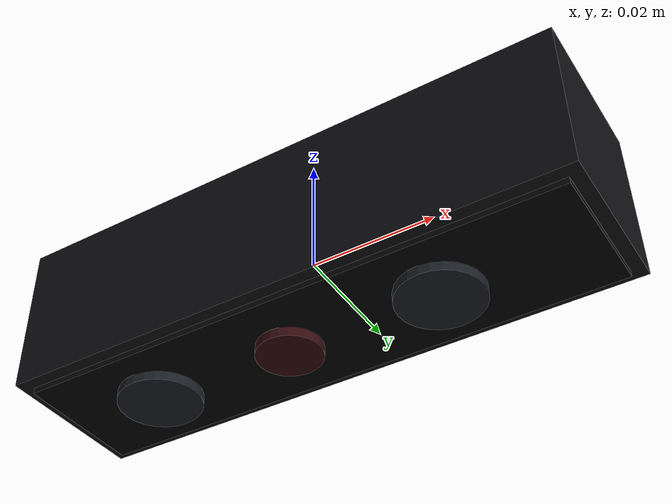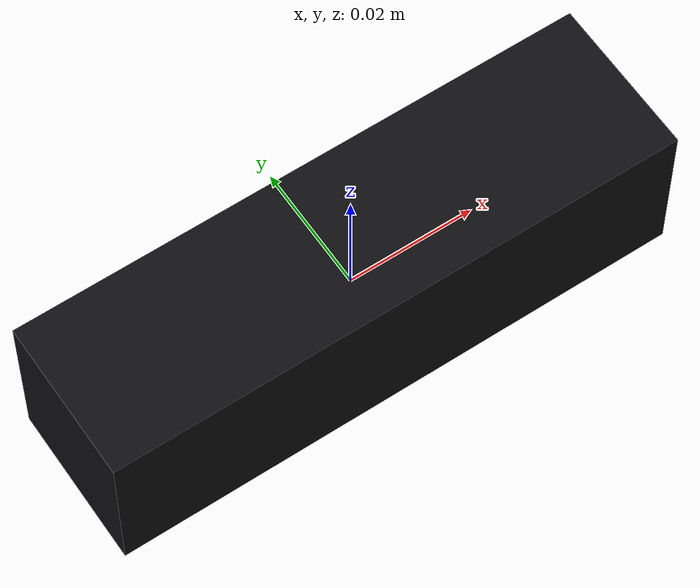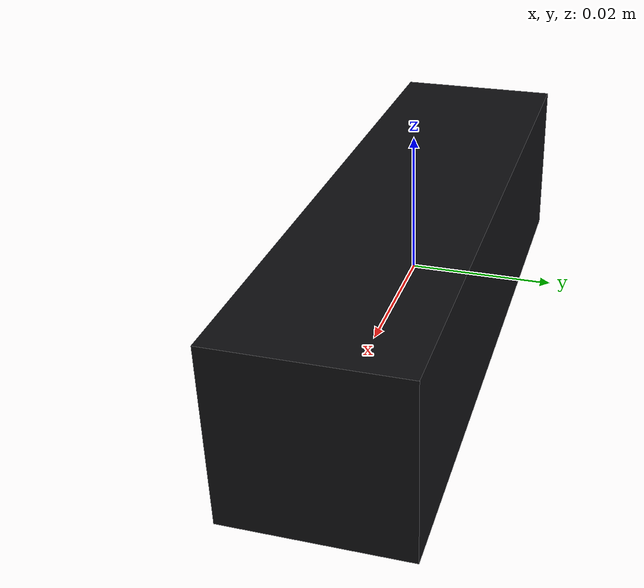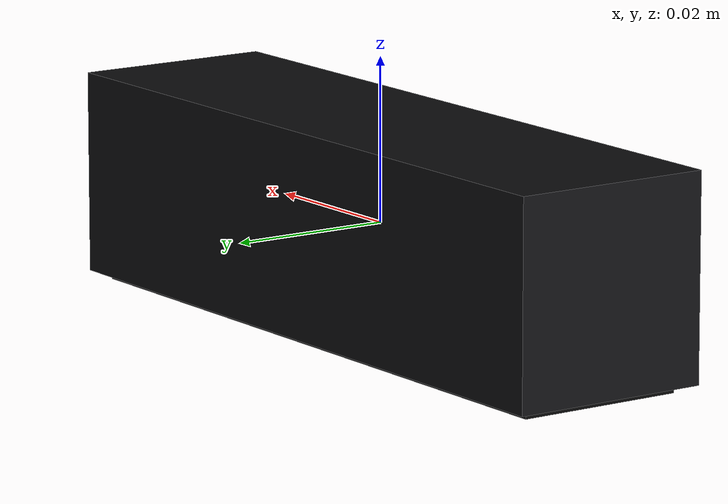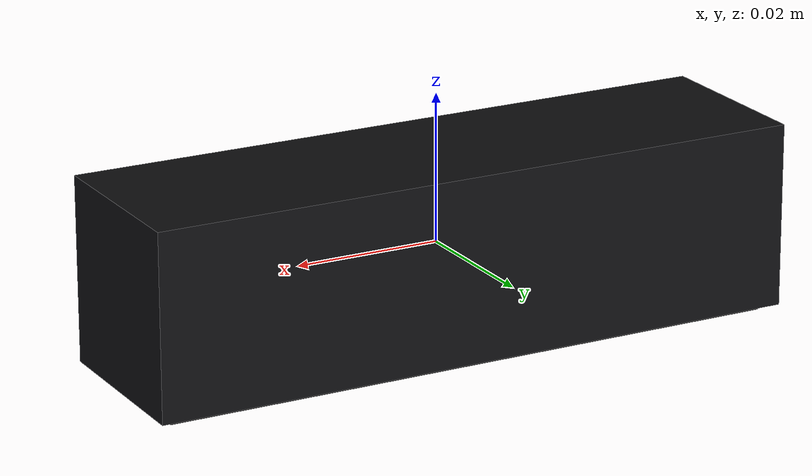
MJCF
<mujoco model="realsense_d435i_lite">
  <default>
    <default class="d435i">
      <geom contype="0" conaffinity="0" group="2"/>
    </default>
  </default>

  <worldbody>
    <body name="d435i" childclass="d435i">
      <geom type="box" size="0.045 0.0125 0.0125" rgba="0.06 0.06 0.07 1" mass="0.072"/>
      <geom type="box" size="0.043 0.0105 0.001" pos="0 0 -0.0125" rgba="0.02 0.02 0.02 1"/>
      <!-- Left IR, RGB, right IR lenses on the front face. -->
      <geom type="cylinder" size="0.0065 0.0015" pos="-0.027 0 -0.0135" rgba="0.1 0.12 0.14 1"/>
      <geom type="cylinder" size="0.005 0.0015" pos="-0.004 0 -0.0135" rgba="0.2 0.04 0.05 1"/>
      <geom type="cylinder" size="0.0065 0.0015" pos="0.02 0 -0.0135" rgba="0.1 0.12 0.14 1"/>
    </body>
  </worldbody>
</mujoco>
